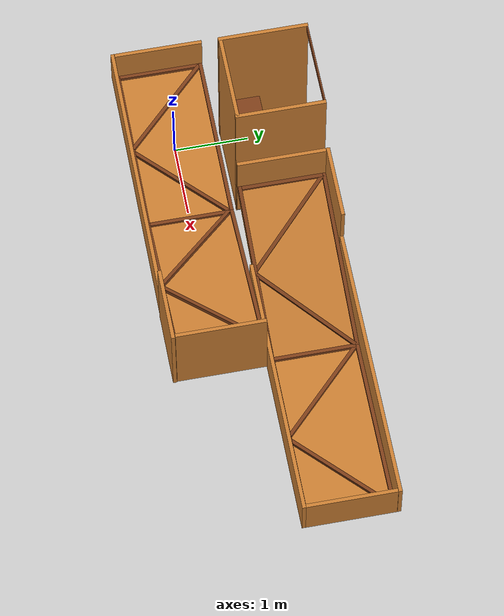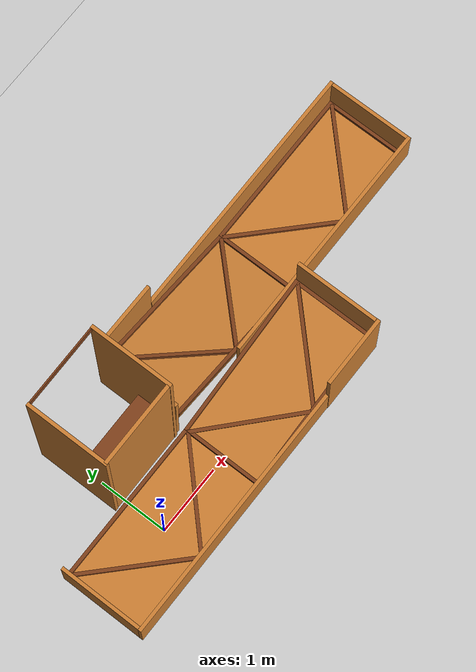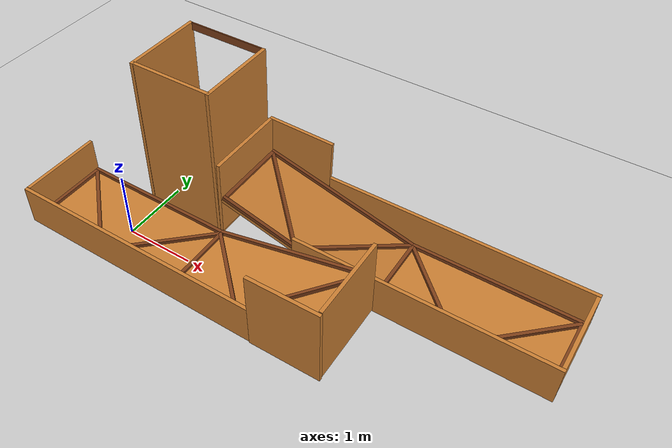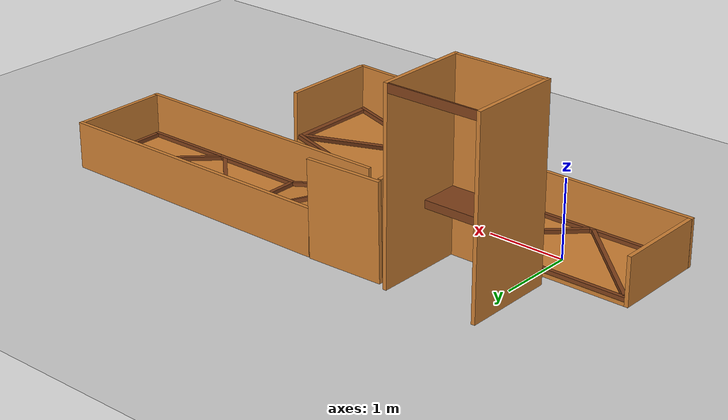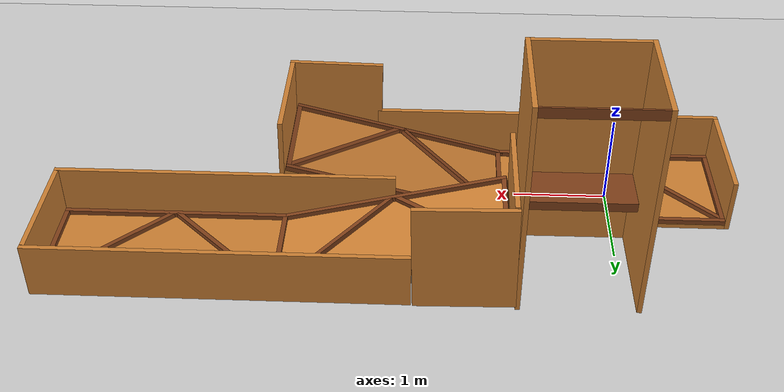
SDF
<?xml version="1.0"?>
<sdf version='1.9'>
  <world name='Obj7'>
    <physics name='1ms' type='ignored'>
      <max_step_size>0.001</max_step_size>
      <real_time_factor>1</real_time_factor>
      <real_time_update_rate>1000</real_time_update_rate>
    </physics>
    <plugin name='gz::sim::systems::Physics' filename='ignition-gazebo-physics-system' />
    <plugin name='gz::sim::systems::UserCommands' filename='ignition-gazebo-user-commands-system' />
    <plugin name='gz::sim::systems::SceneBroadcaster' filename='ignition-gazebo-scene-broadcaster-system' />
    <plugin name='gz::sim::systems::Contact' filename='ignition-gazebo-contact-system' />
    <gravity>0 0 -9.8</gravity>
    <magnetic_field>6e-06 2.3e-05 -4.2e-05</magnetic_field>
    <atmosphere type='adiabatic' />
    <scene>
      <ambient>0.4 0.4 0.4 1</ambient>
      <background>0.7 0.7 0.7 1</background>
      <shadows>true</shadows>
    </scene>
    <model name='ground_plane'>
      <static>true</static>
      <link name='link'>
        <collision name='collision'>
          <geometry>
            <plane>
              <normal>0 0 1</normal>
              <size>100 100</size>
            </plane>
          </geometry>
          <surface>
            <friction>
              <ode />
            </friction>
            <bounce />
            <contact />
          </surface>
        </collision>
        <visual name='visual'>
          <geometry>
            <plane>
              <normal>0 0 1</normal>
              <size>100 100</size>
            </plane>
          </geometry>
          <material>
            <ambient>0.8 0.8 0.8 1</ambient>
            <diffuse>0.8 0.8 0.8 1</diffuse>
            <specular>0.8 0.8 0.8 1</specular>
          </material>
        </visual>
        <pose>0 0 0 0 -0 0</pose>
        <inertial>
          <pose>0 0 0 0 -0 0</pose>
          <mass>1</mass>
          <inertia>
            <ixx>1</ixx>
            <ixy>0</ixy>
            <ixz>0</ixz>
            <iyy>1</iyy>
            <iyz>0</iyz>
            <izz>1</izz>
          </inertia>
        </inertial>
        <enable_wind>false</enable_wind>
      </link>
      <pose>0 0 0 0 -0 0</pose>
      <self_collide>false</self_collide>
    </model>

    <model name='K-Rails'>
      <pose>0 0 0 0 -0 0</pose>
      <link name='Bas1'>
        <inertial>
          <inertia>
            <ixx>0.16666</ixx>
            <ixy>0</ixy>
            <ixz>0</ixz>
            <iyy>0.16666</iyy>
            <iyz>0</iyz>
            <izz>0.16666</izz>
          </inertia>
          <mass>1</mass>
          <pose>0 0 0 0 -0 0</pose>
        </inertial>
        <collision name='Bas1_collision'>
          <geometry>
            <box>
              <size>2.4 1.2 0.05</size>
            </box>
          </geometry>
          <surface>
            <friction>
              <ode />
            </friction>
            <bounce />
            <contact />
          </surface>
        </collision>
        <visual name='Bas1_visual'>
          <geometry>
            <box>
              <size>2.4 1.2 0.05</size>
            </box>
          </geometry>
          <material>
            <ambient>0.8 0.5 0.2 1</ambient>
            <diffuse>0.8 0.5 0.2 1</diffuse>
            <specular>0.4 0.2 0.1 1</specular>
          </material>
        </visual>
        <pose>0 0 0.1 0 -0 0</pose>
        <enable_wind>false</enable_wind>
      </link>
      <link name='Bas2'>
        <inertial>
          <inertia>
            <ixx>0.16666</ixx>
            <ixy>0</ixy>
            <ixz>0</ixz>
            <iyy>0.16666</iyy>
            <iyz>0</iyz>
            <izz>0.16666</izz>
          </inertia>
          <mass>1</mass>
          <pose>0 0 0 0 -0 0</pose>
        </inertial>
        <collision name='Bas2_collision'>
          <geometry>
            <box>
              <size>2.4 1.2 0.05</size>
            </box>
          </geometry>
          <surface>
            <friction>
              <ode />
            </friction>
            <bounce />
            <contact />
          </surface>
        </collision>
        <visual name='Bas2_visual'>
          <geometry>
            <box>
              <size>2.4 1.2 0.05</size>
            </box>
          </geometry>
          <material>
            <ambient>0.8 0.5 0.2 1</ambient>
            <diffuse>0.8 0.5 0.2 1</diffuse>
            <specular>0.4 0.2 0.1 1</specular>
          </material>
        </visual>
        <pose>2.3 0 0.39 0 -0.25 0</pose>
        <enable_wind>false</enable_wind>
      </link>
      <link name='Bas3'>
        <inertial>
          <inertia>
            <ixx>0.16666</ixx>
            <ixy>0</ixy>
            <ixz>0</ixz>
            <iyy>0.16666</iyy>
            <iyz>0</iyz>
            <izz>0.16666</izz>
          </inertia>
          <mass>1</mass>
          <pose>0 0 0 0 -0 0</pose>
        </inertial>
        <collision name='Bas3_collision'>
          <geometry>
            <box>
              <size>2.4 1.2 0.05</size>
            </box>
          </geometry>
          <surface>
            <friction>
              <ode />
            </friction>
            <bounce />
            <contact />
          </surface>
        </collision>
        <visual name='Bas3_visual'>
          <geometry>
            <box>
              <size>2.4 1.2 0.05</size>
            </box>
          </geometry>
          <material>
            <ambient>0.8 0.5 0.2 1</ambient>
            <diffuse>0.8 0.5 0.2 1</diffuse>
            <specular>0.4 0.2 0.1 1</specular>
          </material>
        </visual>
        <pose>2.3 1.25 0.39 0 0.25 0</pose>
        <enable_wind>false</enable_wind>
      </link>
      <link name='Bas4'>
        <inertial>
          <inertia>
            <ixx>0.16666</ixx>
            <ixy>0</ixy>
            <ixz>0</ixz>
            <iyy>0.16666</iyy>
            <iyz>0</iyz>
            <izz>0.16666</izz>
          </inertia>
          <mass>1</mass>
          <pose>0 0 0 0 -0 0</pose>
        </inertial>
        <collision name='Bas4_collision'>
          <geometry>
            <box>
              <size>2.4 1.2 0.05</size>
            </box>
          </geometry>
          <surface>
            <friction>
              <ode />
            </friction>
            <bounce />
            <contact />
          </surface>
        </collision>
        <visual name='Bas4_visual'>
          <geometry>
            <box>
              <size>2.4 1.2 0.05</size>
            </box>
          </geometry>
          <material>
            <ambient>0.8 0.5 0.2 1</ambient>
            <diffuse>0.8 0.5 0.2 1</diffuse>
            <specular>0.4 0.2 0.1 1</specular>
          </material>
        </visual>
        <pose>4.64993 1.25 0.09443 0 -0 0</pose>
        <enable_wind>false</enable_wind>
      </link>
      <link name='Pon1'>
        <inertial>
          <inertia>
            <ixx>0.16666</ixx>
            <ixy>0</ixy>
            <ixz>0</ixz>
            <iyy>0.16666</iyy>
            <iyz>0</iyz>
            <izz>0.16666</izz>
          </inertia>
          <mass>1</mass>
          <pose>0 0 0 0 -0 0</pose>
        </inertial>
        <collision name='Pon1_collision'>
          <geometry>
            <box>
              <size>0.6 1.2 0.05</size>
            </box>
          </geometry>
          <surface>
            <friction>
              <ode />
            </friction>
            <bounce />
            <contact />
          </surface>
        </collision>
        <visual name='Pon1_visual'>
          <geometry>
            <box>
              <size>0.6 1.2 0.05</size>
            </box>
          </geometry>
          <material>
            <ambient>0.8 0.5 0.2 1</ambient>
            <diffuse>0.8 0.5 0.2 1</diffuse>
            <specular>0.4 0.2 0.1 1</specular>
          </material>
        </visual>
        <pose>-1.225 0 0.375 0 1.57 0</pose>
        <enable_wind>false</enable_wind>
      </link>
      <link name='Pon2'>
        <inertial>
          <inertia>
            <ixx>0.16666</ixx>
            <ixy>0</ixy>
            <ixz>0</ixz>
            <iyy>0.16666</iyy>
            <iyz>0</iyz>
            <izz>0.16666</izz>
          </inertia>
          <mass>1</mass>
          <pose>0 0 0 0 -0 0</pose>
        </inertial>
        <collision name='Pon2_collision'>
          <geometry>
            <box>
              <size>0.6 1.2 0.05</size>
            </box>
          </geometry>
          <surface>
            <friction>
              <ode />
            </friction>
            <bounce />
            <contact />
          </surface>
        </collision>
        <visual name='Pon2_visual'>
          <geometry>
            <box>
              <size>0.6 1.2 0.05</size>
            </box>
          </geometry>
          <material>
            <ambient>0.8 0.5 0.2 1</ambient>
            <diffuse>0.8 0.5 0.2 1</diffuse>
            <specular>0.4 0.2 0.1 1</specular>
          </material>
        </visual>
        <pose>5.87493 1.25 0.36943 0 1.57 0</pose>
        <enable_wind>false</enable_wind>
      </link>
      <link name='Pon3'>
        <inertial>
          <inertia>
            <ixx>0.16666</ixx>
            <ixy>0</ixy>
            <ixz>0</ixz>
            <iyy>0.16666</iyy>
            <iyz>0</iyz>
            <izz>0.16666</izz>
          </inertia>
          <mass>1</mass>
          <pose>0 0 0 0 -0 0</pose>
        </inertial>
        <collision name='Pon3_collision'>
          <geometry>
            <box>
              <size>1.2 1.2 0.05</size>
            </box>
          </geometry>
          <surface>
            <friction>
              <ode />
            </friction>
            <bounce />
            <contact />
          </surface>
        </collision>
        <visual name='Pon3_visual'>
          <geometry>
            <box>
              <size>1.2 1.2 0.05</size>
            </box>
          </geometry>
          <material>
            <ambient>0.8 0.5 0.2 1</ambient>
            <diffuse>0.8 0.5 0.2 1</diffuse>
            <specular>0.4 0.2 0.1 1</specular>
          </material>
        </visual>
        <pose>3.49176 0 0.694307 0 1.55 0</pose>
        <enable_wind>false</enable_wind>
      </link>
      <link name='Pon4'>
        <inertial>
          <inertia>
            <ixx>0.16666</ixx>
            <ixy>0</ixy>
            <ixz>0</ixz>
            <iyy>0.16666</iyy>
            <iyz>0</iyz>
            <izz>0.16666</izz>
          </inertia>
          <mass>1</mass>
          <pose>0 0 0 0 -0 0</pose>
        </inertial>
        <collision name='Pon4_collision'>
          <geometry>
            <box>
              <size>1.2 1.2 0.05</size>
            </box>
          </geometry>
          <surface>
            <friction>
              <ode />
            </friction>
            <bounce />
            <contact />
          </surface>
        </collision>
        <visual name='Pon4_visual'>
          <geometry>
            <box>
              <size>1.2 1.2 0.05</size>
            </box>
          </geometry>
          <material>
            <ambient>0.8 0.5 0.2 1</ambient>
            <diffuse>0.8 0.5 0.2 1</diffuse>
            <specular>0.4 0.2 0.1 1</specular>
          </material>
        </visual>
        <pose>1.10824 1.25 0.694307 0 -1.55 0</pose>
        <enable_wind>false</enable_wind>
      </link>
      <link name='Pon5'>
        <inertial>
          <inertia>
            <ixx>0.16666</ixx>
            <ixy>0</ixy>
            <ixz>0</ixz>
            <iyy>0.16666</iyy>
            <iyz>0</iyz>
            <izz>0.16666</izz>
          </inertia>
          <mass>1</mass>
          <pose>0 0 0 0 -0 0</pose>
        </inertial>
        <collision name='Pon5_collision'>
          <geometry>
            <box>
              <size>1.2 1.02 0.05</size>
            </box>
          </geometry>
          <surface>
            <friction>
              <ode />
            </friction>
            <bounce />
            <contact />
          </surface>
        </collision>
        <visual name='Pon5_visual'>
          <geometry>
            <box>
              <size>1.2 1.02 0.05</size>
            </box>
          </geometry>
          <material>
            <ambient>0.8 0.5 0.2 1</ambient>
            <diffuse>0.8 0.5 0.2 1</diffuse>
            <specular>0.4 0.2 0.1 1</specular>
          </material>
        </visual>
        <pose>1.58837 1.88 0.674918 1.57 -1.55 0</pose>
        <enable_wind>false</enable_wind>
      </link>
      <link name='Pon6'>
        <inertial>
          <inertia>
            <ixx>0.16666</ixx>
            <ixy>0</ixy>
            <ixz>0</ixz>
            <iyy>0.16666</iyy>
            <iyz>0</iyz>
            <izz>0.16666</izz>
          </inertia>
          <mass>1</mass>
          <pose>0 0 0 0 -0 0</pose>
        </inertial>
        <collision name='Pon6_collision'>
          <geometry>
            <box>
              <size>1.2 1.02 0.05</size>
            </box>
          </geometry>
          <surface>
            <friction>
              <ode />
            </friction>
            <bounce />
            <contact />
          </surface>
        </collision>
        <visual name='Pon6_visual'>
          <geometry>
            <box>
              <size>1.2 1.02 0.05</size>
            </box>
          </geometry>
          <material>
            <ambient>0.8 0.5 0.2 1</ambient>
            <diffuse>0.8 0.5 0.2 1</diffuse>
            <specular>0.4 0.2 0.1 1</specular>
          </material>
        </visual>
        <pose>3.01163 -0.63 0.674918 1.57 1.55 0</pose>
        <enable_wind>false</enable_wind>
      </link>
      <link name='Par1'>
        <inertial>
          <inertia>
            <ixx>0.16666</ixx>
            <ixy>0</ixy>
            <ixz>0</ixz>
            <iyy>0.16666</iyy>
            <iyz>0</iyz>
            <izz>0.16666</izz>
          </inertia>
          <mass>1</mass>
          <pose>0 0 0 0 -0 0</pose>
        </inertial>
        <collision name='Par1_collision'>
          <geometry>
            <box>
              <size>0.6 3.8 0.05</size>
            </box>
          </geometry>
          <surface>
            <friction>
              <ode />
            </friction>
            <bounce />
            <contact />
          </surface>
        </collision>
        <visual name='Par1_visual'>
          <geometry>
            <box>
              <size>0.6 3.8 0.05</size>
            </box>
          </geometry>
          <material>
            <ambient>0.8 0.5 0.2 1</ambient>
            <diffuse>0.8 0.5 0.2 1</diffuse>
            <specular>0.4 0.2 0.1 1</specular>
          </material>
        </visual>
        <pose>0.65 -0.626 0.375 1.57 1.57 0</pose>
        <enable_wind>false</enable_wind>
      </link>
      <link name='Par2'>
        <inertial>
          <inertia>
            <ixx>0.16666</ixx>
            <ixy>0</ixy>
            <ixz>0</ixz>
            <iyy>0.16666</iyy>
            <iyz>0</iyz>
            <izz>0.16666</izz>
          </inertia>
          <mass>1</mass>
          <pose>0 0 0 0 -0 0</pose>
        </inertial>
        <collision name='Par2_collision'>
          <geometry>
            <box>
              <size>0.6 3.8 0.05</size>
            </box>
          </geometry>
          <surface>
            <friction>
              <ode />
            </friction>
            <bounce />
            <contact />
          </surface>
        </collision>
        <visual name='Par2_visual'>
          <geometry>
            <box>
              <size>0.6 3.8 0.05</size>
            </box>
          </geometry>
          <material>
            <ambient>0.8 0.5 0.2 1</ambient>
            <diffuse>0.8 0.5 0.2 1</diffuse>
            <specular>0.4 0.2 0.1 1</specular>
          </material>
        </visual>
        <pose>3.99993 1.876 0.36943 1.57 1.57 0</pose>
        <enable_wind>false</enable_wind>
      </link>
      <link name='Par3'>
        <inertial>
          <inertia>
            <ixx>0.16666</ixx>
            <ixy>0</ixy>
            <ixz>0</ixz>
            <iyy>0.16666</iyy>
            <iyz>0</iyz>
            <izz>0.16666</izz>
          </inertia>
          <mass>1</mass>
          <pose>0 0 0 0 -0 0</pose>
        </inertial>
        <collision name='Par3_collision'>
          <geometry>
            <box>
              <size>0.6 3.6 0.05</size>
            </box>
          </geometry>
          <surface>
            <friction>
              <ode />
            </friction>
            <bounce />
            <contact />
          </surface>
        </collision>
        <visual name='Par3_visual'>
          <geometry>
            <box>
              <size>0.6 3.6 0.05</size>
            </box>
          </geometry>
          <material>
            <ambient>0.8 0.5 0.2 1</ambient>
            <diffuse>0.8 0.5 0.2 1</diffuse>
            <specular>0.4 0.2 0.1 1</specular>
          </material>
        </visual>
        <pose>4.09993 0.624 0.36943 1.57 1.57 0</pose>
        <enable_wind>false</enable_wind>
      </link>
      <link name='BarA1'>
        <inertial>
          <inertia>
            <ixx>0.16666</ixx>
            <ixy>0</ixy>
            <ixz>0</ixz>
            <iyy>0.16666</iyy>
            <iyz>0</iyz>
            <izz>0.16666</izz>
          </inertia>
          <mass>1</mass>
          <pose>0 0 0 0 -0 0</pose>
        </inertial>
        <collision name='BarA1_collision'>
          <geometry>
            <box>
              <size>2.4 0.05 0.05</size>
            </box>
          </geometry>
          <surface>
            <friction>
              <ode />
            </friction>
            <bounce />
            <contact />
          </surface>
        </collision>
        <visual name='BarA1_visual'>
          <geometry>
            <box>
              <size>2.4 0.05 0.05</size>
            </box>
          </geometry>
          <material>
            <ambient>0.5 0.25 0.1 1</ambient>
            <diffuse>0.5 0.25 0.1 1</diffuse>
            <specular>0.3 0.15 0.05 1</specular>
          </material>
        </visual>
        <pose>0 -0.57 0.15 0 -0 0</pose>
        <enable_wind>false</enable_wind>
      </link>
      <link name='BarA2'>
        <inertial>
          <inertia>
            <ixx>0.16666</ixx>
            <ixy>0</ixy>
            <ixz>0</ixz>
            <iyy>0.16666</iyy>
            <iyz>0</iyz>
            <izz>0.16666</izz>
          </inertia>
          <mass>1</mass>
          <pose>0 0 0 0 -0 0</pose>
        </inertial>
        <collision name='BarA2_collision'>
          <geometry>
            <box>
              <size>2.4 0.05 0.05</size>
            </box>
          </geometry>
          <surface>
            <friction>
              <ode />
            </friction>
            <bounce />
            <contact />
          </surface>
        </collision>
        <visual name='BarA2_visual'>
          <geometry>
            <box>
              <size>2.4 0.05 0.05</size>
            </box>
          </geometry>
          <material>
            <ambient>0.5 0.25 0.1 1</ambient>
            <diffuse>0.5 0.25 0.1 1</diffuse>
            <specular>0.3 0.15 0.05 1</specular>
          </material>
        </visual>
        <pose>0 0.57 0.15 0 -0 0</pose>
        <enable_wind>false</enable_wind>
      </link>
      <link name='BarA3'>
        <inertial>
          <inertia>
            <ixx>0.16666</ixx>
            <ixy>0</ixy>
            <ixz>0</ixz>
            <iyy>0.16666</iyy>
            <iyz>0</iyz>
            <izz>0.16666</izz>
          </inertia>
          <mass>1</mass>
          <pose>0 0 0 0 -0 0</pose>
        </inertial>
        <collision name='BarA3_collision'>
          <geometry>
            <box>
              <size>0.05 1.1 0.05</size>
            </box>
          </geometry>
          <surface>
            <friction>
              <ode />
            </friction>
            <bounce />
            <contact />
          </surface>
        </collision>
        <visual name='BarA3_visual'>
          <geometry>
            <box>
              <size>0.05 1.1 0.05</size>
            </box>
          </geometry>
          <material>
            <ambient>0.5 0.25 0.1 1</ambient>
            <diffuse>0.5 0.25 0.1 1</diffuse>
            <specular>0.3 0.15 0.05 1</specular>
          </material>
        </visual>
        <pose>-1.175 0 0.15 0 -0 0</pose>
        <enable_wind>false</enable_wind>
      </link>
      <link name='BarA4'>
        <inertial>
          <inertia>
            <ixx>0.16666</ixx>
            <ixy>0</ixy>
            <ixz>0</ixz>
            <iyy>0.16666</iyy>
            <iyz>0</iyz>
            <izz>0.16666</izz>
          </inertia>
          <mass>1</mass>
          <pose>0 0 0 0 -0 0</pose>
        </inertial>
        <collision name='BarA4_collision'>
          <geometry>
            <box>
              <size>0.05 1.1 0.05</size>
            </box>
          </geometry>
          <surface>
            <friction>
              <ode />
            </friction>
            <bounce />
            <contact />
          </surface>
        </collision>
        <visual name='BarA4_visual'>
          <geometry>
            <box>
              <size>0.05 1.1 0.05</size>
            </box>
          </geometry>
          <material>
            <ambient>0.5 0.25 0.1 1</ambient>
            <diffuse>0.5 0.25 0.1 1</diffuse>
            <specular>0.3 0.15 0.05 1</specular>
          </material>
        </visual>
        <pose>1.175 0 0.15 0 -0 0</pose>
        <enable_wind>false</enable_wind>
      </link>
      <link name='BarA5'>
        <inertial>
          <inertia>
            <ixx>0.16666</ixx>
            <ixy>0</ixy>
            <ixz>0</ixz>
            <iyy>0.16666</iyy>
            <iyz>0</iyz>
            <izz>0.16666</izz>
          </inertia>
          <mass>1</mass>
          <pose>0 0 0 0 -0 0</pose>
        </inertial>
        <collision name='BarA5_collision'>
          <geometry>
            <box>
              <size>0.05 1.6 0.05</size>
            </box>
          </geometry>
          <surface>
            <friction>
              <ode />
            </friction>
            <bounce />
            <contact />
          </surface>
        </collision>
        <visual name='BarA5_visual'>
          <geometry>
            <box>
              <size>0.05 1.6 0.05</size>
            </box>
          </geometry>
          <material>
            <ambient>0.5 0.25 0.1 1</ambient>
            <diffuse>0.5 0.25 0.1 1</diffuse>
            <specular>0.3 0.15 0.05 1</specular>
          </material>
        </visual>
        <pose>-0.6 -0.01 0.15 0 -0 0.8</pose>
        <enable_wind>false</enable_wind>
      </link>
      <link name='BarA6'>
        <inertial>
          <inertia>
            <ixx>0.16666</ixx>
            <ixy>0</ixy>
            <ixz>0</ixz>
            <iyy>0.16666</iyy>
            <iyz>0</iyz>
            <izz>0.16666</izz>
          </inertia>
          <mass>1</mass>
          <pose>0 0 0 0 -0 0</pose>
        </inertial>
        <collision name='BarA6_collision'>
          <geometry>
            <box>
              <size>0.05 1.6 0.05</size>
            </box>
          </geometry>
          <surface>
            <friction>
              <ode />
            </friction>
            <bounce />
            <contact />
          </surface>
        </collision>
        <visual name='BarA6_visual'>
          <geometry>
            <box>
              <size>0.05 1.6 0.05</size>
            </box>
          </geometry>
          <material>
            <ambient>0.5 0.25 0.1 1</ambient>
            <diffuse>0.5 0.25 0.1 1</diffuse>
            <specular>0.3 0.15 0.05 1</specular>
          </material>
        </visual>
        <pose>0.6 -0.01 0.15 0 0 -0.8</pose>
        <enable_wind>false</enable_wind>
      </link>
      <link name='BarA7'>
        <inertial>
          <inertia>
            <ixx>0.16666</ixx>
            <ixy>0</ixy>
            <ixz>0</ixz>
            <iyy>0.16666</iyy>
            <iyz>0</iyz>
            <izz>0.16666</izz>
          </inertia>
          <mass>1</mass>
          <pose>0 0 0 0 -0 0</pose>
        </inertial>
        <collision name='BarA7_collision'>
          <geometry>
            <box>
              <size>2.4 0.05 0.05</size>
            </box>
          </geometry>
          <surface>
            <friction>
              <ode />
            </friction>
            <bounce />
            <contact />
          </surface>
        </collision>
        <visual name='BarA7_visual'>
          <geometry>
            <box>
              <size>2.4 0.05 0.05</size>
            </box>
          </geometry>
          <material>
            <ambient>0.5 0.25 0.1 1</ambient>
            <diffuse>0.5 0.25 0.1 1</diffuse>
            <specular>0.3 0.15 0.05 1</specular>
          </material>
        </visual>
        <pose>2.28763 -0.57 0.438446 0 -0.25 0</pose>
        <enable_wind>false</enable_wind>
      </link>
      <link name='BarA8'>
        <inertial>
          <inertia>
            <ixx>0.16666</ixx>
            <ixy>0</ixy>
            <ixz>0</ixz>
            <iyy>0.16666</iyy>
            <iyz>0</iyz>
            <izz>0.16666</izz>
          </inertia>
          <mass>1</mass>
          <pose>0 0 0 0 -0 0</pose>
        </inertial>
        <collision name='BarA8_collision'>
          <geometry>
            <box>
              <size>2.4 0.05 0.05</size>
            </box>
          </geometry>
          <surface>
            <friction>
              <ode />
            </friction>
            <bounce />
            <contact />
          </surface>
        </collision>
        <visual name='BarA8_visual'>
          <geometry>
            <box>
              <size>2.4 0.05 0.05</size>
            </box>
          </geometry>
          <material>
            <ambient>0.5 0.25 0.1 1</ambient>
            <diffuse>0.5 0.25 0.1 1</diffuse>
            <specular>0.3 0.15 0.05 1</specular>
          </material>
        </visual>
        <pose>2.28763 0.57 0.438446 0 -0.25 0</pose>
        <enable_wind>false</enable_wind>
      </link>
      <link name='BarA9'>
        <inertial>
          <inertia>
            <ixx>0.16666</ixx>
            <ixy>0</ixy>
            <ixz>0</ixz>
            <iyy>0.16666</iyy>
            <iyz>0</iyz>
            <izz>0.16666</izz>
          </inertia>
          <mass>1</mass>
          <pose>0 0 0 0 -0 0</pose>
        </inertial>
        <collision name='BarA9_collision'>
          <geometry>
            <box>
              <size>0.05 1.1 0.05</size>
            </box>
          </geometry>
          <surface>
            <friction>
              <ode />
            </friction>
            <bounce />
            <contact />
          </surface>
        </collision>
        <visual name='BarA9_visual'>
          <geometry>
            <box>
              <size>0.05 1.1 0.05</size>
            </box>
          </geometry>
          <material>
            <ambient>0.5 0.25 0.1 1</ambient>
            <diffuse>0.5 0.25 0.1 1</diffuse>
            <specular>0.3 0.15 0.05 1</specular>
          </material>
        </visual>
        <pose>3.4261 0 0.729145 0 -0.25 0</pose>
        <enable_wind>false</enable_wind>
      </link>
      <link name='BarA10'>
        <inertial>
          <inertia>
            <ixx>0.16666</ixx>
            <ixy>0</ixy>
            <ixz>0</ixz>
            <iyy>0.16666</iyy>
            <iyz>0</iyz>
            <izz>0.16666</izz>
          </inertia>
          <mass>1</mass>
          <pose>0 0 0 0 -0 0</pose>
        </inertial>
        <collision name='BarA10_collision'>
          <geometry>
            <box>
              <size>0.05 1.6 0.05</size>
            </box>
          </geometry>
          <surface>
            <friction>
              <ode />
            </friction>
            <bounce />
            <contact />
          </surface>
        </collision>
        <visual name='BarA10_visual'>
          <geometry>
            <box>
              <size>0.05 1.6 0.05</size>
            </box>
          </geometry>
          <material>
            <ambient>0.5 0.25 0.1 1</ambient>
            <diffuse>0.5 0.25 0.1 1</diffuse>
            <specular>0.3 0.15 0.05 1</specular>
          </material>
        </visual>
        <pose>1.70628 -0.01 0.290003 -0.181163 -0.173233 0.815774</pose>
        <enable_wind>false</enable_wind>
      </link>
      <link name='BarA11'>
        <inertial>
          <inertia>
            <ixx>0.16666</ixx>
            <ixy>0</ixy>
            <ixz>0</ixz>
            <iyy>0.16666</iyy>
            <iyz>0</iyz>
            <izz>0.16666</izz>
          </inertia>
          <mass>1</mass>
          <pose>0 0 0 0 -0 0</pose>
        </inertial>
        <collision name='BarA11_collision'>
          <geometry>
            <box>
              <size>0.05 1.6 0.05</size>
            </box>
          </geometry>
          <surface>
            <friction>
              <ode />
            </friction>
            <bounce />
            <contact />
          </surface>
        </collision>
        <visual name='BarA11_visual'>
          <geometry>
            <box>
              <size>0.05 1.6 0.05</size>
            </box>
          </geometry>
          <material>
            <ambient>0.5 0.25 0.1 1</ambient>
            <diffuse>0.5 0.25 0.1 1</diffuse>
            <specular>0.3 0.15 0.05 1</specular>
          </material>
        </visual>
        <pose>2.86898 -0.01 0.586888 0.181163 -0.173233 -0.815774</pose>
        <enable_wind>false</enable_wind>
      </link>
      <link name='BarA12'>
        <inertial>
          <inertia>
            <ixx>0.16666</ixx>
            <ixy>0</ixy>
            <ixz>0</ixz>
            <iyy>0.16666</iyy>
            <iyz>0</iyz>
            <izz>0.16666</izz>
          </inertia>
          <mass>1</mass>
          <pose>0 0 0 0 -0 0</pose>
        </inertial>
        <collision name='BarA12_collision'>
          <geometry>
            <box>
              <size>2.4 0.05 0.05</size>
            </box>
          </geometry>
          <surface>
            <friction>
              <ode />
            </friction>
            <bounce />
            <contact />
          </surface>
        </collision>
        <visual name='BarA12_visual'>
          <geometry>
            <box>
              <size>2.4 0.05 0.05</size>
            </box>
          </geometry>
          <material>
            <ambient>0.5 0.25 0.1 1</ambient>
            <diffuse>0.5 0.25 0.1 1</diffuse>
            <specular>0.3 0.15 0.05 1</specular>
          </material>
        </visual>
        <pose>2.31237 0.68 0.438446 0 0.25 0</pose>
        <enable_wind>false</enable_wind>
      </link>
      <link name='BarA13'>
        <inertial>
          <inertia>
            <ixx>0.16666</ixx>
            <ixy>0</ixy>
            <ixz>0</ixz>
            <iyy>0.16666</iyy>
            <iyz>0</iyz>
            <izz>0.16666</izz>
          </inertia>
          <mass>1</mass>
          <pose>0 0 0 0 -0 0</pose>
        </inertial>
        <collision name='BarA13_collision'>
          <geometry>
            <box>
              <size>2.4 0.05 0.05</size>
            </box>
          </geometry>
          <surface>
            <friction>
              <ode />
            </friction>
            <bounce />
            <contact />
          </surface>
        </collision>
        <visual name='BarA13_visual'>
          <geometry>
            <box>
              <size>2.4 0.05 0.05</size>
            </box>
          </geometry>
          <material>
            <ambient>0.5 0.25 0.1 1</ambient>
            <diffuse>0.5 0.25 0.1 1</diffuse>
            <specular>0.3 0.15 0.05 1</specular>
          </material>
        </visual>
        <pose>2.31237 1.82 0.438446 0 0.25 0</pose>
        <enable_wind>false</enable_wind>
      </link>
      <link name='BarA14'>
        <inertial>
          <inertia>
            <ixx>0.16666</ixx>
            <ixy>0</ixy>
            <ixz>0</ixz>
            <iyy>0.16666</iyy>
            <iyz>0</iyz>
            <izz>0.16666</izz>
          </inertia>
          <mass>1</mass>
          <pose>0 0 0 0 -0 0</pose>
        </inertial>
        <collision name='BarA14_collision'>
          <geometry>
            <box>
              <size>0.05 1.1 0.05</size>
            </box>
          </geometry>
          <surface>
            <friction>
              <ode />
            </friction>
            <bounce />
            <contact />
          </surface>
        </collision>
        <visual name='BarA14_visual'>
          <geometry>
            <box>
              <size>0.05 1.1 0.05</size>
            </box>
          </geometry>
          <material>
            <ambient>0.5 0.25 0.1 1</ambient>
            <diffuse>0.5 0.25 0.1 1</diffuse>
            <specular>0.3 0.15 0.05 1</specular>
          </material>
        </visual>
        <pose>1.1739 1.25 0.729145 0 0.25 0</pose>
        <enable_wind>false</enable_wind>
      </link>
      <link name='BarA15'>
        <inertial>
          <inertia>
            <ixx>0.16666</ixx>
            <ixy>0</ixy>
            <ixz>0</ixz>
            <iyy>0.16666</iyy>
            <iyz>0</iyz>
            <izz>0.16666</izz>
          </inertia>
          <mass>1</mass>
          <pose>0 0 0 0 -0 0</pose>
        </inertial>
        <collision name='BarA15_collision'>
          <geometry>
            <box>
              <size>0.05 1.6 0.05</size>
            </box>
          </geometry>
          <surface>
            <friction>
              <ode />
            </friction>
            <bounce />
            <contact />
          </surface>
        </collision>
        <visual name='BarA15_visual'>
          <geometry>
            <box>
              <size>0.05 1.6 0.05</size>
            </box>
          </geometry>
          <material>
            <ambient>0.5 0.25 0.1 1</ambient>
            <diffuse>0.5 0.25 0.1 1</diffuse>
            <specular>0.3 0.15 0.05 1</specular>
          </material>
        </visual>
        <pose>1.73102 1.24 0.586888 0.181163 0.173233 0.815774</pose>
        <enable_wind>false</enable_wind>
      </link>
      <link name='BarA16'>
        <inertial>
          <inertia>
            <ixx>0.16666</ixx>
            <ixy>0</ixy>
            <ixz>0</ixz>
            <iyy>0.16666</iyy>
            <iyz>0</iyz>
            <izz>0.16666</izz>
          </inertia>
          <mass>1</mass>
          <pose>0 0 0 0 -0 0</pose>
        </inertial>
        <collision name='BarA16_collision'>
          <geometry>
            <box>
              <size>0.05 1.6 0.05</size>
            </box>
          </geometry>
          <surface>
            <friction>
              <ode />
            </friction>
            <bounce />
            <contact />
          </surface>
        </collision>
        <visual name='BarA16_visual'>
          <geometry>
            <box>
              <size>0.05 1.6 0.05</size>
            </box>
          </geometry>
          <material>
            <ambient>0.5 0.25 0.1 1</ambient>
            <diffuse>0.5 0.25 0.1 1</diffuse>
            <specular>0.3 0.15 0.05 1</specular>
          </material>
        </visual>
        <pose>2.89372 1.24 0.290003 -0.181163 0.173233 -0.815774</pose>
        <enable_wind>false</enable_wind>
      </link>
      <link name='BarA17'>
        <inertial>
          <inertia>
            <ixx>0.16666</ixx>
            <ixy>0</ixy>
            <ixz>0</ixz>
            <iyy>0.16666</iyy>
            <iyz>0</iyz>
            <izz>0.16666</izz>
          </inertia>
          <mass>1</mass>
          <pose>0 0 0 0 -0 0</pose>
        </inertial>
        <collision name='BarA17_collision'>
          <geometry>
            <box>
              <size>2.4 0.05 0.05</size>
            </box>
          </geometry>
          <surface>
            <friction>
              <ode />
            </friction>
            <bounce />
            <contact />
          </surface>
        </collision>
        <visual name='BarA17_visual'>
          <geometry>
            <box>
              <size>2.4 0.05 0.05</size>
            </box>
          </geometry>
          <material>
            <ambient>0.5 0.25 0.1 1</ambient>
            <diffuse>0.5 0.25 0.1 1</diffuse>
            <specular>0.3 0.15 0.05 1</specular>
          </material>
        </visual>
        <pose>4.64993 0.68 0.14443 0 -0 0</pose>
        <enable_wind>false</enable_wind>
      </link>
      <link name='BarA18'>
        <inertial>
          <inertia>
            <ixx>0.16666</ixx>
            <ixy>0</ixy>
            <ixz>0</ixz>
            <iyy>0.16666</iyy>
            <iyz>0</iyz>
            <izz>0.16666</izz>
          </inertia>
          <mass>1</mass>
          <pose>0 0 0 0 -0 0</pose>
        </inertial>
        <collision name='BarA18_collision'>
          <geometry>
            <box>
              <size>2.4 0.05 0.05</size>
            </box>
          </geometry>
          <surface>
            <friction>
              <ode />
            </friction>
            <bounce />
            <contact />
          </surface>
        </collision>
        <visual name='BarA18_visual'>
          <geometry>
            <box>
              <size>2.4 0.05 0.05</size>
            </box>
          </geometry>
          <material>
            <ambient>0.5 0.25 0.1 1</ambient>
            <diffuse>0.5 0.25 0.1 1</diffuse>
            <specular>0.3 0.15 0.05 1</specular>
          </material>
        </visual>
        <pose>4.64993 1.82 0.14443 0 -0 0</pose>
        <enable_wind>false</enable_wind>
      </link>
      <link name='BarA19'>
        <inertial>
          <inertia>
            <ixx>0.16666</ixx>
            <ixy>0</ixy>
            <ixz>0</ixz>
            <iyy>0.16666</iyy>
            <iyz>0</iyz>
            <izz>0.16666</izz>
          </inertia>
          <mass>1</mass>
          <pose>0 0 0 0 -0 0</pose>
        </inertial>
        <collision name='BarA19_collision'>
          <geometry>
            <box>
              <size>0.05 1.1 0.05</size>
            </box>
          </geometry>
          <surface>
            <friction>
              <ode />
            </friction>
            <bounce />
            <contact />
          </surface>
        </collision>
        <visual name='BarA19_visual'>
          <geometry>
            <box>
              <size>0.05 1.1 0.05</size>
            </box>
          </geometry>
          <material>
            <ambient>0.5 0.25 0.1 1</ambient>
            <diffuse>0.5 0.25 0.1 1</diffuse>
            <specular>0.3 0.15 0.05 1</specular>
          </material>
        </visual>
        <pose>5.82493 1.25 0.14443 0 -0 0</pose>
        <enable_wind>false</enable_wind>
      </link>
      <link name='BarA20'>
        <inertial>
          <inertia>
            <ixx>0.16666</ixx>
            <ixy>0</ixy>
            <ixz>0</ixz>
            <iyy>0.16666</iyy>
            <iyz>0</iyz>
            <izz>0.16666</izz>
          </inertia>
          <mass>1</mass>
          <pose>0 0 0 0 -0 0</pose>
        </inertial>
        <collision name='BarA20_collision'>
          <geometry>
            <box>
              <size>0.05 1.1 0.05</size>
            </box>
          </geometry>
          <surface>
            <friction>
              <ode />
            </friction>
            <bounce />
            <contact />
          </surface>
        </collision>
        <visual name='BarA20_visual'>
          <geometry>
            <box>
              <size>0.05 1.1 0.05</size>
            </box>
          </geometry>
          <material>
            <ambient>0.5 0.25 0.1 1</ambient>
            <diffuse>0.5 0.25 0.1 1</diffuse>
            <specular>0.3 0.15 0.05 1</specular>
          </material>
        </visual>
        <pose>3.47493 1.25 0.14443 0 -0 0</pose>
        <enable_wind>false</enable_wind>
      </link>
      <link name='BarA21'>
        <inertial>
          <inertia>
            <ixx>0.16666</ixx>
            <ixy>0</ixy>
            <ixz>0</ixz>
            <iyy>0.16666</iyy>
            <iyz>0</iyz>
            <izz>0.16666</izz>
          </inertia>
          <mass>1</mass>
          <pose>0 0 0 0 -0 0</pose>
        </inertial>
        <collision name='BarA21_collision'>
          <geometry>
            <box>
              <size>0.05 1.6 0.05</size>
            </box>
          </geometry>
          <surface>
            <friction>
              <ode />
            </friction>
            <bounce />
            <contact />
          </surface>
        </collision>
        <visual name='BarA21_visual'>
          <geometry>
            <box>
              <size>0.05 1.6 0.05</size>
            </box>
          </geometry>
          <material>
            <ambient>0.5 0.25 0.1 1</ambient>
            <diffuse>0.5 0.25 0.1 1</diffuse>
            <specular>0.3 0.15 0.05 1</specular>
          </material>
        </visual>
        <pose>4.04993 1.24 0.14443 -0 0 0.8</pose>
        <enable_wind>false</enable_wind>
      </link>
      <link name='BarA22'>
        <inertial>
          <inertia>
            <ixx>0.16666</ixx>
            <ixy>0</ixy>
            <ixz>0</ixz>
            <iyy>0.16666</iyy>
            <iyz>0</iyz>
            <izz>0.16666</izz>
          </inertia>
          <mass>1</mass>
          <pose>0 0 0 0 -0 0</pose>
        </inertial>
        <collision name='BarA22_collision'>
          <geometry>
            <box>
              <size>0.05 1.6 0.05</size>
            </box>
          </geometry>
          <surface>
            <friction>
              <ode />
            </friction>
            <bounce />
            <contact />
          </surface>
        </collision>
        <visual name='BarA22_visual'>
          <geometry>
            <box>
              <size>0.05 1.6 0.05</size>
            </box>
          </geometry>
          <material>
            <ambient>0.5 0.25 0.1 1</ambient>
            <diffuse>0.5 0.25 0.1 1</diffuse>
            <specular>0.3 0.15 0.05 1</specular>
          </material>
        </visual>
        <pose>5.24993 1.24 0.14443 0 0 -0.8</pose>
        <enable_wind>false</enable_wind>
      </link>
      <static>true</static>
      <self_collide>false</self_collide>
    </model>

    <model name='Operator_booth' canonical_link='Par1'>
      <pose>0.450814 0.674538 1.2 1.5708 4e-06 -3.13755</pose>
      <static>true</static>
      <link name='Par1'>
        <inertial>
          <inertia>
            <ixx>0.16666</ixx>
            <ixy>0</ixy>
            <ixz>0</ixz>
            <iyy>0.16666</iyy>
            <iyz>0</iyz>
            <izz>0.16666</izz>
          </inertia>
          <mass>1</mass>
          <pose>0 0 0 0 -0 0</pose>
        </inertial>
        <collision name='Par1_collision'>
          <geometry>
            <box>
              <size>1.2 2.4 0.05</size>
            </box>
          </geometry>
          <surface>
            <friction>
              <ode />
            </friction>
            <bounce />
            <contact />
          </surface>
        </collision>
        <visual name='Par1_visual'>
          <geometry>
            <box>
              <size>1.2 2.4 0.05</size>
            </box>
          </geometry>
          <material>
            <ambient>0.8 0.5 0.2 1</ambient>
            <diffuse>0.8 0.5 0.2 1</diffuse>
            <specular>0.4 0.2 0.1 1</specular>
          </material>
        </visual>
        <pose>0 0 0 0 -0 0</pose>
        <enable_wind>false</enable_wind>
      </link>
      <link name='Par2'>
        <pose>0.6 0 0.57 0 1.57 0</pose>
        <inertial>
          <inertia>
            <ixx>0.16666</ixx>
            <ixy>0</ixy>
            <ixz>0</ixz>
            <iyy>0.16666</iyy>
            <iyz>0</iyz>
            <izz>0.16666</izz>
          </inertia>
          <mass>1</mass>
          <pose>0 0 0 0 -0 0</pose>
        </inertial>
        <collision name='Par2_collision'>
          <geometry>
            <box>
              <size>1.2 2.4 0.05</size>
            </box>
          </geometry>
          <surface>
            <friction>
              <ode />
            </friction>
            <bounce />
            <contact />
          </surface>
        </collision>
        <visual name='Par2_visual'>
          <geometry>
            <box>
              <size>1.2 2.4 0.05</size>
            </box>
          </geometry>
          <material>
            <ambient>0.8 0.5 0.2 1</ambient>
            <diffuse>0.8 0.5 0.2 1</diffuse>
            <specular>0.4 0.2 0.1 1</specular>
          </material>
        </visual>
        <pose>0 0 0 0 -0 0</pose>
        <enable_wind>false</enable_wind>
      </link>
      <link name='Par3'>
        <pose>-0.6 0 0.57 0 1.57 0</pose>
        <inertial>
          <inertia>
            <ixx>0.16666</ixx>
            <ixy>0</ixy>
            <ixz>0</ixz>
            <iyy>0.16666</iyy>
            <iyz>0</iyz>
            <izz>0.16666</izz>
          </inertia>
          <mass>1</mass>
          <pose>0 0 0 0 -0 0</pose>
        </inertial>
        <collision name='Par3_collision'>
          <geometry>
            <box>
              <size>1.2 2.4 0.05</size>
            </box>
          </geometry>
          <surface>
            <friction>
              <ode />
            </friction>
            <bounce />
            <contact />
          </surface>
        </collision>
        <visual name='Par3_visual'>
          <geometry>
            <box>
              <size>1.2 2.4 0.05</size>
            </box>
          </geometry>
          <material>
            <ambient>0.8 0.5 0.2 1</ambient>
            <diffuse>0.8 0.5 0.2 1</diffuse>
            <specular>0.4 0.2 0.1 1</specular>
          </material>
        </visual>
        <pose>0 0 0 0 -0 0</pose>
        <enable_wind>false</enable_wind>
      </link>
      <link name='Blo1'>
        <pose>0 1.144 1.156 0 -0 1.57</pose>
        <inertial>
          <inertia>
            <ixx>0.16666</ixx>
            <ixy>0</ixy>
            <ixz>0</ixz>
            <iyy>0.16666</iyy>
            <iyz>0</iyz>
            <izz>0.16666</izz>
          </inertia>
          <mass>1</mass>
          <pose>0 0 0 0 -0 0</pose>
        </inertial>
        <collision name='Blo1_collision'>
          <geometry>
            <box>
              <size>0.111 1.2 0.02</size>
            </box>
          </geometry>
          <surface>
            <friction>
              <ode />
            </friction>
            <bounce />
            <contact />
          </surface>
        </collision>
        <visual name='Blo1_visual'>
          <geometry>
            <box>
              <size>0.111 1.2 0.02</size>
            </box>
          </geometry>
          <material>
            <ambient>0.5 0.25 0.1 1</ambient>
            <diffuse>0.5 0.25 0.1 1</diffuse>
            <specular>0.3 0.15 0.05 1</specular>
          </material>
        </visual>
        <pose>0 0 0 0 -0 0</pose>
        <enable_wind>false</enable_wind>
      </link>
      <link name='Blo2'>
        <pose>0 -0.4 0.27 0 1.57 1.57</pose>
        <inertial>
          <inertia>
            <ixx>0.16666</ixx>
            <ixy>0</ixy>
            <ixz>0</ixz>
            <iyy>0.16666</iyy>
            <iyz>0</iyz>
            <izz>0.16666</izz>
          </inertia>
          <mass>1</mass>
          <pose>0 0 0 0 -0 0</pose>
        </inertial>
        <collision name='Blo2_collision'>
          <geometry>
            <box>
              <size>0.5 1.2 0.1</size>
            </box>
          </geometry>
          <surface>
            <friction>
              <ode />
            </friction>
            <bounce />
            <contact />
          </surface>
        </collision>
        <visual name='Blo2_visual'>
          <geometry>
            <box>
              <size>0.5 1.2 0.1</size>
            </box>
          </geometry>
          <material>
            <ambient>0.5 0.25 0.1 1</ambient>
            <diffuse>0.5 0.25 0.1 1</diffuse>
            <specular>0.3 0.15 0.05 1</specular>
          </material>
        </visual>
        <pose>0 0 0 0 -0 0</pose>
        <enable_wind>false</enable_wind>
      </link>
      <self_collide>false</self_collide>
    </model>

    <light name='sun' type='directional'>
      <pose>0 0 10 0 -0 0</pose>
      <cast_shadows>true</cast_shadows>
      <intensity>1</intensity>
      <direction>-0.5 0.1 -0.9</direction>
      <diffuse>0.8 0.8 0.8 1</diffuse>
      <specular>0.2 0.2 0.2 1</specular>
      <attenuation>
        <range>1000</range>
        <linear>0.01</linear>
        <constant>0.90000000000000002</constant>
        <quadratic>0.001</quadratic>
      </attenuation>
      <spot>
        <inner_angle>0</inner_angle>
        <outer_angle>0</outer_angle>
        <falloff>0</falloff>
      </spot>
    </light>
  </world>
</sdf>
